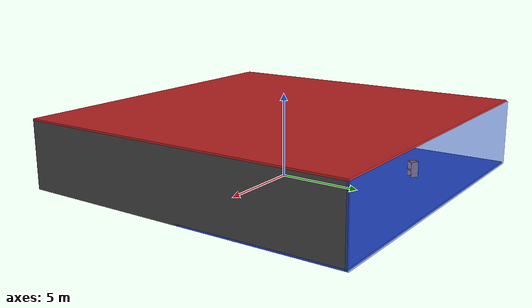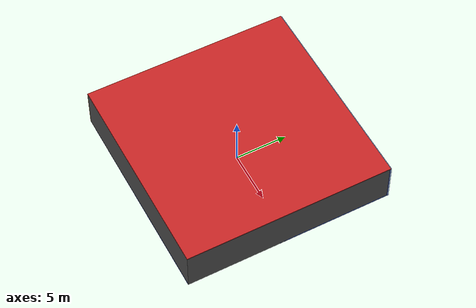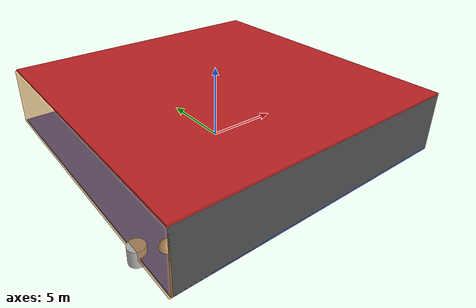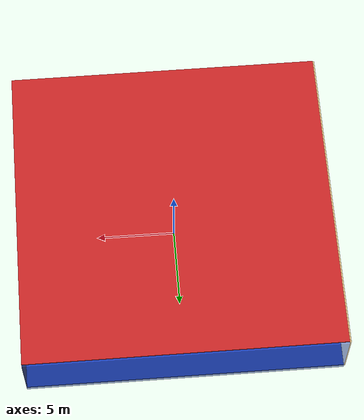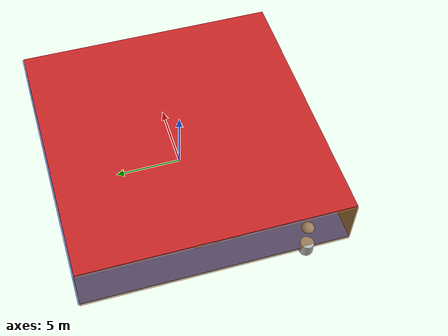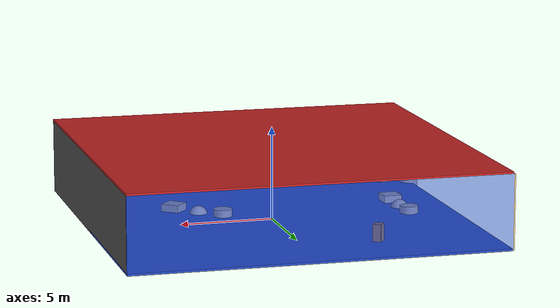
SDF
<sdf version="1.4">
 <world name="default">
  <physics type="ode">
   <max_step_size>0.001</max_step_size>
   <real_time_factor>1</real_time_factor>
   <real_time_update_rate>1000</real_time_update_rate>
   <gravity>0 0 -9.8</gravity>
  </physics>
  <scene><ambient>0.4 0.4 0.4 1</ambient><background>0.7 0.7 0.7 1</background><shadows>1</shadows></scene>
  <model name="Surrounding">
   <static>1</static>
   <link name="Ceiling">
    <collision name="Ceiling_Collision"><geometry><box><size>20 20 0.1</size></box></geometry></collision>
    <visual name="Ceiling_Visual">
     <geometry><box><size>20 20 0.1</size></box></geometry>
     <material>
      <script><uri>file://media/materials/scripts/gazebo.material</uri><name>Gazebo/RedGlow</name></script>
     </material>
    </visual>
    <pose>0 0 4.05 0 0 0</pose>
   </link>
   <link name="Wall_South">
    <collision name="Wall_South_Collision">
     <geometry><box><size>20 0 4</size></box></geometry>
     <pose>0 0 2 0 -0 0</pose>
    </collision>
    <visual name="Wall_South_Visual">
     <pose>0 0 2 0 -0 0</pose>
     <geometry><box><size>20 0 4</size></box></geometry>
     <material>
      <script><uri>file://media/materials/scripts/gazebo.material</uri><name>Gazebo/Road</name></script>
     </material>
    </visual>
    <velocity_decay><linear>0</linear><angular>0</angular></velocity_decay>
    <pose>0 -10 0 0 -0 0</pose>
   </link>
   <link name="Wall_East">
    <collision name="Wall_21_Collision">
     <geometry><box><size>20 0 4</size></box></geometry>
     <pose>0 0 2 0 -0 0</pose>
    </collision>
    <visual name="Wall_21_Visual">
     <pose>0 0 2 0 -0 0</pose>
     <geometry><box><size>20 0 4</size></box></geometry>
     <material>
      <script><uri>file://media/materials/scripts/gazebo.material</uri><name>Gazebo/Road</name></script>
     </material>
    </visual>
    <velocity_decay><linear>0</linear><angular>0</angular></velocity_decay>
    <pose>10 0 0 0 -0 1.5708</pose>
   </link>
   <link name="Wall_North">
    <collision name="Wall_22_Collision">
     <geometry><box><size>20 0.2 4</size></box></geometry>
     <pose>0 0 2 0 -0 0</pose>
    </collision>
    <visual name="Wall_22_Visual">
     <pose>0 0 2 0 -0 0</pose>
     <geometry><box><size>20 0.2 4</size></box></geometry>
     <material>
      <script><uri>file://media/materials/scripts/gazebo.material</uri><name>Gazebo/BlueTransparent</name></script>
     </material>
    </visual>
    <velocity_decay><linear>0</linear><angular>0</angular></velocity_decay>
    <pose>0 10 0 0 -0 0</pose>
   </link>
   <link name="Wall_West">
    <collision name="Wall_23_Collision">
     <geometry><box><size>20 0.2 4</size></box></geometry>
     <pose>0 0 2 0 -0 0</pose>
    </collision>
    <visual name="Wall_23_Visual">
     <pose>0 0 2 0 -0 0</pose>
     <geometry><box><size>20 0.2 4</size></box></geometry>
     <material>
      <script>
       <uri>file://media/materials/scripts/gazebo.material</uri>
       <name>Gazebo/OrangeTransparent</name>
      </script>
     </material>
    </visual>
    <velocity_decay><linear>0</linear><angular>0</angular></velocity_decay>
    <pose>-10 0 0 0 0 -1.5708</pose>
   </link>
   <link name="Ground_link">
    <collision name="collision">
     <pose>0 0 .05 0 -0 0</pose>
     <geometry><box><size>20 20 0.1</size></box></geometry>
    </collision>
    <visual name="visual">
     <pose>0 0 .05 0 -0 0</pose>
     <geometry><box><size>20 20 0.1</size></box></geometry>
     <material>
      <script><uri>file://media/materials/scripts/gazebo.material</uri><name>Gazebo/Blue</name></script>
     </material>
    </visual>
   </link>
   <static>1</static>
  </model>
  <spherical_coordinates>
   <surface_model>EARTH_WGS84</surface_model>
   <latitude_deg>0</latitude_deg>
   <longitude_deg>0</longitude_deg>
   <elevation>0</elevation>
   <heading_deg>0</heading_deg>
  </spherical_coordinates>
  <light name="lightball_0" type="diffuse">
   <diffuse>0.8 0.8 0.8 1</diffuse>
   <specular>0.2 0.2 0.2 1</specular>
   <attenuation>
    <range>100</range>
    <constant>0.7</constant>
    <linear>0.01</linear>
    <quadratic>0.001</quadratic>
   </attenuation>
   <direction>-0.5 0.1 -0.9</direction>
   <pose>-3.93881749872 -9.50209111966 2.58048954673 0 0 0</pose>
  </light>
  <light name="lightball_1" type="diffuse">
   <diffuse>0.8 0.8 0.8 1</diffuse>
   <specular>0.2 0.2 0.2 1</specular>
   <attenuation>
    <range>100</range>
    <constant>0.7</constant>
    <linear>0.01</linear>
    <quadratic>0.001</quadratic>
   </attenuation>
   <direction>-0.5 0.1 -0.9</direction>
   <pose>8.14397298332 6.96700273805 2.15532276545 0 0 0</pose>
  </light>
  <light name="lightball_2" type="diffuse">
   <diffuse>0.8 0.8 0.8 1</diffuse>
   <specular>0.2 0.2 0.2 1</specular>
   <attenuation>
    <range>100</range>
    <constant>0.7</constant>
    <linear>0.01</linear>
    <quadratic>0.001</quadratic>
   </attenuation>
   <direction>-0.5 0.1 -0.9</direction>
   <pose>-5.9061071321 6.53532363483 1.51841371055 0 0 0</pose>
  </light>
  <light name="lightball_3" type="diffuse">
   <diffuse>0.8 0.8 0.8 1</diffuse>
   <specular>0.2 0.2 0.2 1</specular>
   <attenuation>
    <range>100</range>
    <constant>0.7</constant>
    <linear>0.01</linear>
    <quadratic>0.001</quadratic>
   </attenuation>
   <direction>-0.5 0.1 -0.9</direction>
   <pose>-1.51278527529 -3.28203768223 1.10541213444 0 0 0</pose>
  </light>
  <light name="lightball_4" type="diffuse">
   <diffuse>0.8 0.8 0.8 1</diffuse>
   <specular>0.2 0.2 0.2 1</specular>
   <attenuation>
    <range>100</range>
    <constant>0.7</constant>
    <linear>0.01</linear>
    <quadratic>0.001</quadratic>
   </attenuation>
   <direction>-0.5 0.1 -0.9</direction>
   <pose>-3.65325626239 -8.46798120505 1.4362048787 0 0 0</pose>
  </light>
  <light name="lightball_5" type="diffuse">
   <diffuse>0.8 0.8 0.8 1</diffuse>
   <specular>0.2 0.2 0.2 1</specular>
   <attenuation>
    <range>100</range>
    <constant>0.7</constant>
    <linear>0.01</linear>
    <quadratic>0.001</quadratic>
   </attenuation>
   <direction>-0.5 0.1 -0.9</direction>
   <pose>-2.66878918963 -8.77951506217 3.08882759821 0 0 0</pose>
  </light>
  <include>
   <uri>model://textured_shapes</uri>
   <pose>-8.53634428901 -7.38555513361 0 0 0 1.13788245976</pose>
  </include>
  <include>
   <uri>model://textured_shapes</uri>
   <pose>-7.40989785073 -0.697753679074 0 0 0 0.0357715469124</pose>
  </include>
  <include>
   <uri>model://construction_cone</uri>
   <pose>-4.03718821385 -7.63069223204 0 0 0 0.960114324264</pose>
  </include>
  <include><uri>model://cabinet</uri><pose>-3.90244771231 6.60494569036 0 0 0 2.49004743336</pose></include>
  <include>
   <uri>model://textured_shapes</uri>
   <pose>3.57604053462 -1.98559705566 0 0 0 0.84908779161</pose>
  </include>
 </world>
</sdf>

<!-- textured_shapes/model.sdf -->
<sdf version="1.6">
  <model name="textured_shapes">
    <pose>0 0 0.5 0 0 0</pose>
    <link name="box">
      <pose>0 -1.5 0 0 0 0</pose>
      <collision name="collision">
        <geometry>
          <box>
            <size>1 1 1</size>
          </box>
        </geometry>
      </collision>
      <visual name="visual">
        <geometry>
          <box>
            <size>1 1 1</size>
          </box>
        </geometry>
        <material>
          <script>
            <uri>model://../model_source/models/textured_shapes/materials/scripts</uri>
            <uri>model://../model_source/models/textured_shapes/materials/textures</uri>
            <name>TexturedShape/Squares</name>
          </script>
        </material>
      </visual>
    </link>
    <link name="sphere">
      <collision name="collision">
        <geometry>
          <sphere>
            <radius>0.5</radius>
          </sphere>
        </geometry>
      </collision>
      <visual name="visual">
        <geometry>
          <sphere>
            <radius>0.5</radius>
          </sphere>
        </geometry>
        <material>
          <script>
            <uri>model://../model_source/models/textured_shapes/materials/scripts</uri>
            <uri>model://../model_source/models/textured_shapes/materials/textures</uri>
            <name>TexturedShape/Squares</name>
          </script>
        </material>
      </visual>
    </link>
    <link name="cylinder">
      <pose>0 1.5 0 0 0 0</pose>
      <collision name="collision">
        <geometry>
          <cylinder>
            <radius>0.5</radius>
            <length>1</length>
          </cylinder>
        </geometry>
      </collision>
      <visual name="visual">
        <geometry>
          <cylinder>
            <radius>0.5</radius>
            <length>1</length>
          </cylinder>
        </geometry>
        <material>
          <script>
            <uri>model://../model_source/models/textured_shapes/materials/scripts</uri>
            <uri>model://../model_source/models/textured_shapes/materials/textures</uri>
            <name>TexturedShape/Squares</name>
          </script>
        </material>
      </visual>
    </link>
  </model>
</sdf>

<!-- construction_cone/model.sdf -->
<sdf version="1.5">
  <model name="Construction Cone">
    <link name="link">
      <collision name="collision">
        <geometry>
          <mesh>
            <scale>10 10 10</scale>
            <uri>file://isr-testbed/construction_cone/meshes/construction_cone.dae</uri>
          </mesh>
        </geometry>
      </collision>
      <visual name="visual">
        <geometry>
          <mesh>
            <scale>10 10 10</scale>
            <uri>file://isr-testbed/construction_cone/meshes/construction_cone.dae</uri>
          </mesh>
        </geometry>
      </visual>
    </link>
  </model>
</sdf>

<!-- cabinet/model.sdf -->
<sdf version="1.5">
  <model name="cabinet">
    <static>true</static>
    <link name="cabinet_bottom_plate">
      <inertial>
        <pose>0 0 -1 0 0 0</pose>
        <inertia>
          <ixx>2.050000</ixx>
          <ixy>0</ixy>
          <ixz>0</ixz>
          <iyy>2.050000</iyy>
          <iyz>0</iyz>
          <izz>2.050000</izz>
        </inertia>
        <mass>25.000000</mass>
      </inertial>
      <collision name="cabinet_bottom_plate_geom">
        <pose>0 0 0.010000 0 0 0</pose>
        <geometry>
          <box>
            <size>0.450000 0.450000 0.020000</size>
          </box>
        </geometry>
      </collision>
      <visual name="cabinet_bottom_plate_geom_visual">
        <pose>0 0 0.010000 0 0 0</pose>
        <geometry>
          <box>
            <size>0.450000 0.450000 0.020000</size>
          </box>
        </geometry>
        <material>
          <script>
            <uri>model://media/materials/scripts/gazebo.material</uri>
            <name>Gazebo/Wood</name>
          </script>
        </material>
      </visual>
      <collision name="cabinet_bottom_plate_geom_cabinet_back_plate">
        <pose>0.235000 0 0.510000 0 0 0</pose>
        <geometry>
          <box>
            <size>0.020000 0.450000 1.020000</size>
          </box>
        </geometry>
      </collision>
      <visual name="cabinet_bottom_plate_geom_cabinet_back_plate_visual">
        <pose>0.235000 0 0.510000 0 0 0</pose>
        <geometry>
          <box>
            <size>0.020000 0.450000 1.020000</size>
          </box>
        </geometry>
        <material>
          <script>
            <uri>model://media/materials/scripts/gazebo.material</uri>
            <name>Gazebo/Wood</name>
          </script>
        </material>
      </visual>
      <collision name="cabinet_bottom_plate_geom_cabinet_left_plate">
        <pose>0 0.235000 0.510000 0 0 0</pose>
        <geometry>
          <box>
            <size>0.450000 0.020000 1.020000</size>
          </box>
        </geometry>
      </collision>
      <visual name="cabinet_bottom_plate_geom_cabinet_left_plate_visual">
        <pose>0 0.235000 0.510000 0 0 0</pose>
        <geometry>
          <box>
            <size>0.450000 0.020000 1.020000</size>
          </box>
        </geometry>
        <material>
          <script>
            <uri>model://media/materials/scripts/gazebo.material</uri>
            <name>Gazebo/Wood</name>
          </script>
        </material>
      </visual>
      <collision name="cabinet_bottom_plate_geom_cabinet_middle_plate">
        <pose>0 0 0.510000 0 0 0</pose>
        <geometry>
          <box>
            <size>0.450000 0.450000 0.020000</size>
          </box>
        </geometry>
      </collision>
      <visual name="cabinet_bottom_plate_geom_cabinet_middle_plate_visual">
        <pose>0 0 0.510000 0 0 0</pose>
        <geometry>
          <box>
            <size>0.450000 0.450000 0.020000</size>
          </box>
        </geometry>
        <material>
          <script>
            <uri>model://media/materials/scripts/gazebo.material</uri>
            <name>Gazebo/Wood</name>
          </script>
        </material>
      </visual>
      <collision name="cabinet_bottom_plate_geom_cabinet_right_plate">
        <pose>0 -0.235000 0.510000 0 0 0</pose>
        <geometry>
          <box>
            <size>0.450000 0.020000 1.020000</size>
          </box>
        </geometry>
      </collision>
      <visual name="cabinet_bottom_plate_geom_cabinet_right_plate_visual">
        <pose>0 -0.235000 0.510000 0 0 0</pose>
        <geometry>
          <box>
            <size>0.450000 0.020000 1.020000</size>
          </box>
        </geometry>
        <material>
          <script>
            <uri>model://media/materials/scripts/gazebo.material</uri>
            <name>Gazebo/Wood</name>
          </script>
        </material>
      </visual>
      <collision name="cabinet_bottom_plate_geom_cabinet_top_plate">
        <pose>0 0 1.010000 0 0 0</pose>
        <geometry>
          <box>
            <size>0.450000 0.450000 0.020000</size>
          </box>
        </geometry>
      </collision>
      <visual name="cabinet_bottom_plate_geom_cabinet_top_plate_visual">
        <pose>0 0 1.010000 0 0 0</pose>
        <geometry>
          <box>
            <size>0.450000 0.450000 0.020000</size>
          </box>
        </geometry>
        <material>
          <script>
            <uri>model://media/materials/scripts/gazebo.material</uri>
            <name>Gazebo/Wood</name>
          </script>
        </material>
      </visual>
    </link>
  </model>
</sdf>
